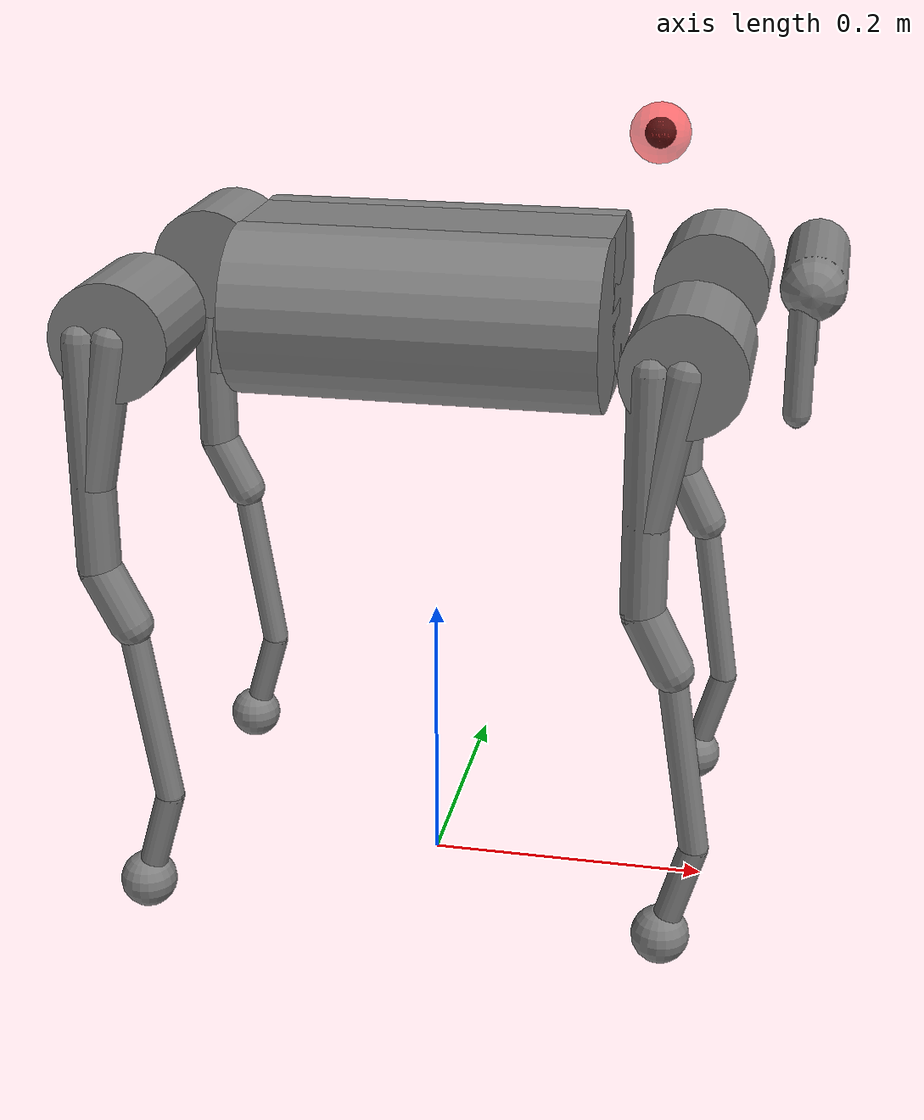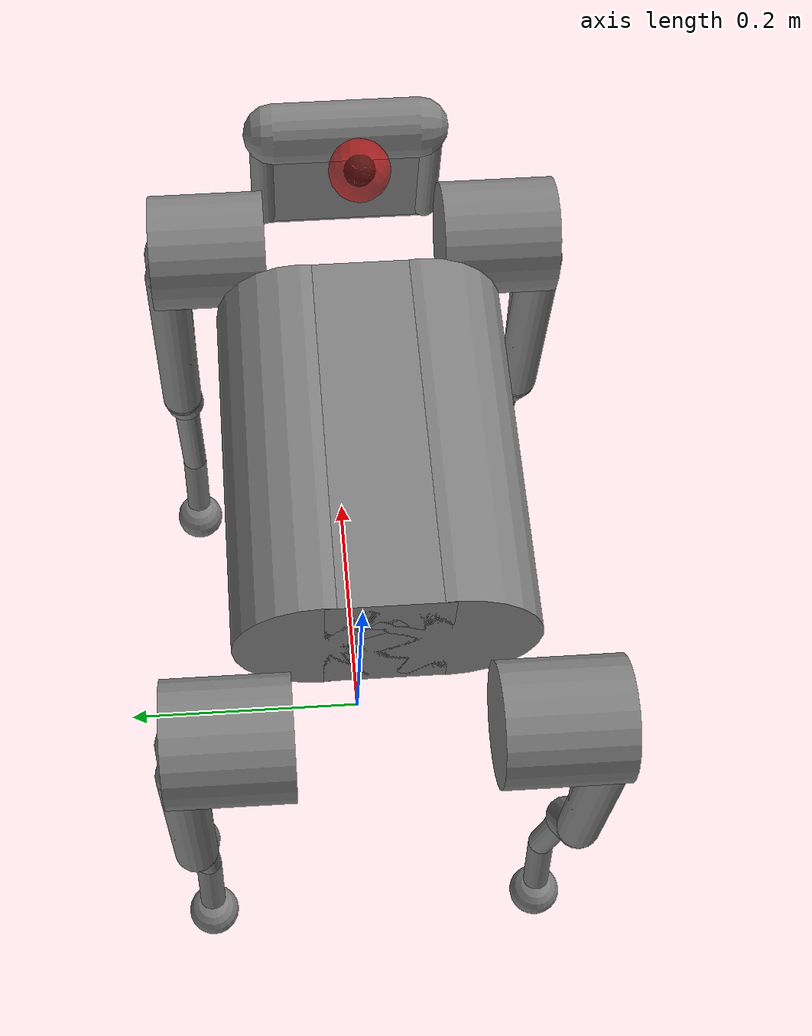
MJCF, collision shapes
<mujoco model="a1">
  <compiler angle="radian" meshdir="assets" texturedir="assets" autolimits="true"/>

  <option cone="elliptic" impratio="100"/>

  <default>
    <default class="a1">
      <geom friction="0.6" margin="0.001"/>
      <joint axis="0 1 0" damping="2" armature="0.01" frictionloss="0.2"/>
      <position kp="20" kv="0.5" forcerange="-33.5 33.5"/>
      <default class="abduction">
        <joint axis="1 0 0" damping="1" range="-0.802851 0.802851"/>
        <position ctrlrange="-0.802851 0.802851"/>
      </default>
      <default class="hip">
        <joint range="-1.0472 4.18879"/>
        <position ctrlrange="-1.0472 4.18879"/>
      </default>
      <default class="knee">
        <joint range="-2.69653 -0.916298"/>
        <position ctrlrange="-2.69653 -0.916298"/>
      </default>
      <default class="visual">
        <geom type="mesh" contype="0" conaffinity="0" group="2" material="dark"/>
      </default>
      <default class="collision">
        <geom group="3" type="capsule"/>
        <default class="hip_left">
          <geom size="0.04 0.04" quat="1 1 0 0" type="cylinder" pos="0 0.055 0"/>
        </default>
        <default class="hip_right">
          <geom size="0.04 0.04" quat="1 1 0 0" type="cylinder" pos="0 -0.055 0"/>
        </default>
        <default class="thigh1">
          <geom size="0.015" fromto="-0.02 0 0 -0.02 0 -0.16"/>
        </default>
        <default class="thigh2">
          <geom size="0.015" fromto="0 0 0 -0.02 0 -0.1"/>
        </default>
        <default class="thigh3">
          <geom size="0.015" fromto="-0.02 0 -0.16 0 0 -0.2"/>
        </default>
        <default class="calf1">
          <geom size="0.01" fromto="0 0 0 0.02 0 -0.13"/>
        </default>
        <default class="calf2">
          <geom size="0.01" fromto="0.02 0 -0.13 0 0 -0.2"/>
        </default>
        <default class="foot">
          <geom type="sphere" size="0.02" pos="0 0 -0.2" priority="1" solimp="0.015 1 0.02" condim="6"
            friction="0.8 0.02 0.01"/>
        </default>
      </default>
    </default>
  </default>

  <asset>
    <material name="dark" specular="0" shininess="0.25" rgba="0.2 0.2 0.2 1"/>
    <texture type="2d" name="trunk_A1" file="trunk_A1.png"/>
    <material name="carbonfibre" texture="trunk_A1" specular="0" shininess="0.25"/>

    <mesh class="a1" file="calf.obj"/>
    <mesh class="a1" file="hip.obj"/>
    <mesh class="a1" file="thigh.obj"/>
    <mesh class="a1" file="thigh_mirror.obj"/>
    <mesh class="a1" file="trunk.obj"/>
  </asset>

  <worldbody>
    <light name="spotlight" mode="targetbodycom" target="trunk" pos="0 -1 2"/>
    <body name="trunk" pos="0 0 0.43" childclass="a1">
      <freejoint/>
      <inertial mass="4.713" pos="0 0.0041 -0.0005"
        fullinertia="0.0158533 0.0377999 0.0456542 -3.66e-05 -6.11e-05 -2.75e-05"/>
      <geom class="visual" mesh="trunk" material="carbonfibre"/>
      <geom class="collision" size="0.125 0.04 0.057" type="box"/>
      <geom class="collision" quat="1 0 1 0" pos="0 -0.04 0" size="0.058 0.125" type="cylinder"/>
      <geom class="collision" quat="1 0 1 0" pos="0 +0.04 0" size="0.058 0.125" type="cylinder"/>
      <geom class="collision" pos="0.25 0 0" size="0.005 0.06 0.05" type="box"/>
      <geom class="collision" pos="0.25 0.06 -0.01" size="0.009 0.035"/>
      <geom class="collision" pos="0.25 -0.06 -0.01" size="0.009 0.035"/>
      <geom class="collision" pos="0.25 0 -0.05" size="0.005 0.06" quat="1 1 0 0"/>
      <geom class="collision" pos="0.255 0 0.0355" size="0.021 0.052" quat="1 1 0 0"/>

      <!-- Lidar body on top of trunk -->
      <body name="lidar_body" pos="0.15 0 0.12" euler="0 1.5708 0">
        <site name="lidar_origin" pos="0 0 0" size="0.02" type="sphere" rgba="1 0 0 0.5" />
        <!-- 40 evenly spaced lidar beams covering full 360 degrees (9 degrees apart) -->
        <site name="lidar_beam_0" pos="0 0 0" euler="0.000000 0 0" size="0.01" />
        <site name="lidar_beam_1" pos="0 0 0" euler="0.157080 0 0" size="0.01" />
        <site name="lidar_beam_2" pos="0 0 0" euler="0.314159 0 0" size="0.01" />
        <site name="lidar_beam_3" pos="0 0 0" euler="0.471239 0 0" size="0.01" />
        <site name="lidar_beam_4" pos="0 0 0" euler="0.628319 0 0" size="0.01" />
        <site name="lidar_beam_5" pos="0 0 0" euler="0.785398 0 0" size="0.01" />
        <site name="lidar_beam_6" pos="0 0 0" euler="0.942478 0 0" size="0.01" />
        <site name="lidar_beam_7" pos="0 0 0" euler="1.099557 0 0" size="0.01" />
        <site name="lidar_beam_8" pos="0 0 0" euler="1.256637 0 0" size="0.01" />
        <site name="lidar_beam_9" pos="0 0 0" euler="1.413717 0 0" size="0.01" />
        <site name="lidar_beam_10" pos="0 0 0" euler="1.570796 0 0" size="0.01" />
        <site name="lidar_beam_11" pos="0 0 0" euler="1.727876 0 0" size="0.01" />
        <site name="lidar_beam_12" pos="0 0 0" euler="1.884956 0 0" size="0.01" />
        <site name="lidar_beam_13" pos="0 0 0" euler="2.042035 0 0" size="0.01" />
        <site name="lidar_beam_14" pos="0 0 0" euler="2.199115 0 0" size="0.01" />
        <site name="lidar_beam_15" pos="0 0 0" euler="2.356194 0 0" size="0.01" />
        <site name="lidar_beam_16" pos="0 0 0" euler="2.513274 0 0" size="0.01" />
        <site name="lidar_beam_17" pos="0 0 0" euler="2.670354 0 0" size="0.01" />
        <site name="lidar_beam_18" pos="0 0 0" euler="2.827433 0 0" size="0.01" />
        <site name="lidar_beam_19" pos="0 0 0" euler="2.984513 0 0" size="0.01" />
        <site name="lidar_beam_20" pos="0 0 0" euler="3.141593 0 0" size="0.01" />
        <site name="lidar_beam_21" pos="0 0 0" euler="3.298672 0 0" size="0.01" />
        <site name="lidar_beam_22" pos="0 0 0" euler="3.455752 0 0" size="0.01" />
        <site name="lidar_beam_23" pos="0 0 0" euler="3.612832 0 0" size="0.01" />
        <site name="lidar_beam_24" pos="0 0 0" euler="3.769911 0 0" size="0.01" />
        <site name="lidar_beam_25" pos="0 0 0" euler="3.926991 0 0" size="0.01" />
        <site name="lidar_beam_26" pos="0 0 0" euler="4.084070 0 0" size="0.01" />
        <site name="lidar_beam_27" pos="0 0 0" euler="4.241150 0 0" size="0.01" />
        <site name="lidar_beam_28" pos="0 0 0" euler="4.398230 0 0" size="0.01" />
        <site name="lidar_beam_29" pos="0 0 0" euler="4.555309 0 0" size="0.01" />
        <site name="lidar_beam_30" pos="0 0 0" euler="4.712389 0 0" size="0.01" />
        <site name="lidar_beam_31" pos="0 0 0" euler="4.869469 0 0" size="0.01" />
        <site name="lidar_beam_32" pos="0 0 0" euler="5.026548 0 0" size="0.01" />
        <site name="lidar_beam_33" pos="0 0 0" euler="5.183628 0 0" size="0.01" />
        <site name="lidar_beam_34" pos="0 0 0" euler="5.340708 0 0" size="0.01" />
        <site name="lidar_beam_35" pos="0 0 0" euler="5.497787 0 0" size="0.01" />
        <site name="lidar_beam_36" pos="0 0 0" euler="5.654867 0 0" size="0.01" />
        <site name="lidar_beam_37" pos="0 0 0" euler="5.811946 0 0" size="0.01" />
        <site name="lidar_beam_38" pos="0 0 0" euler="5.969026 0 0" size="0.01" />
        <site name="lidar_beam_39" pos="0 0 0" euler="6.126106 0 0" size="0.01" />
      </body>

      <body name="FR_hip" pos="0.183 -0.047 0">
        <inertial mass="0.696" pos="-0.003311 -0.000635 3.1e-05" quat="0.507528 0.506268 0.491507 0.494499"
          diaginertia="0.000807752 0.00055293 0.000468983"/>
        <joint class="abduction" name="FR_hip_joint"/>
        <geom class="visual" mesh="hip" quat="0 1 0 0"/>
        <geom class="hip_right"/>
        <body name="FR_thigh" pos="0 -0.08505 0">
          <inertial mass="1.013" pos="-0.003237 0.022327 -0.027326" quat="0.999125 -0.00256393 -0.0409531 -0.00806091"
            diaginertia="0.00555739 0.00513936 0.00133944"/>
          <joint class="hip" name="FR_thigh_joint"/>
          <geom class="visual" mesh="thigh_mirror"/>
          <geom class="thigh1"/>
          <geom class="thigh2"/>
          <geom class="thigh3"/>
          <body name="FR_calf" pos="0 0 -0.2">
            <inertial mass="0.226" pos="0.00472659 0 -0.131975" quat="0.706886 0.017653 0.017653 0.706886"
              diaginertia="0.00340344 0.00339393 3.54834e-05"/>
            <joint class="knee" name="FR_calf_joint"/>
            <geom class="visual" mesh="calf"/>
            <geom class="calf1"/>
            <geom class="calf2"/>
            <geom class="foot"/>
          </body>
        </body>
      </body>
      <body name="FL_hip" pos="0.183 0.047 0">
        <inertial mass="0.696" pos="-0.003311 0.000635 3.1e-05" quat="0.494499 0.491507 0.506268 0.507528"
          diaginertia="0.000807752 0.00055293 0.000468983"/>
        <joint class="abduction" name="FL_hip_joint"/>
        <geom class="visual" mesh="hip"/>
        <geom class="hip_left"/>
        <geom class="collision" size="0.04 0.04" pos="0 0.055 0" quat="1 1 0 0" type="cylinder"/>
        <body name="FL_thigh" pos="0 0.08505 0">
          <inertial mass="1.013" pos="-0.003237 -0.022327 -0.027326" quat="0.999125 0.00256393 -0.0409531 0.00806091"
            diaginertia="0.00555739 0.00513936 0.00133944"/>
          <joint class="hip" name="FL_thigh_joint"/>
          <geom class="visual" mesh="thigh"/>
          <geom class="thigh1"/>
          <geom class="thigh2"/>
          <geom class="thigh3"/>
          <body name="FL_calf" pos="0 0 -0.2">
            <inertial mass="0.226" pos="0.00472659 0 -0.131975" quat="0.706886 0.017653 0.017653 0.706886"
              diaginertia="0.00340344 0.00339393 3.54834e-05"/>
            <joint class="knee" name="FL_calf_joint"/>
            <geom class="visual" mesh="calf"/>
            <geom class="calf1"/>
            <geom class="calf2"/>
            <geom class="foot"/>
          </body>
        </body>
      </body>
      <body name="RR_hip" pos="-0.183 -0.047 0">
        <inertial mass="0.696" pos="0.003311 -0.000635 3.1e-05" quat="0.491507 0.494499 0.507528 0.506268"
          diaginertia="0.000807752 0.00055293 0.000468983"/>
        <joint class="abduction" name="RR_hip_joint"/>
        <geom class="visual" quat="0 0 0 -1" mesh="hip"/>
        <geom class="hip_right"/>
        <body name="RR_thigh" pos="0 -0.08505 0">
          <inertial mass="1.013" pos="-0.003237 0.022327 -0.027326" quat="0.999125 -0.00256393 -0.0409531 -0.00806091"
            diaginertia="0.00555739 0.00513936 0.00133944"/>
          <joint class="hip" name="RR_thigh_joint"/>
          <geom class="visual" mesh="thigh_mirror"/>
          <geom class="thigh1"/>
          <geom class="thigh2"/>
          <geom class="thigh3"/>
          <body name="RR_calf" pos="0 0 -0.2">
            <inertial mass="0.226" pos="0.00472659 0 -0.131975" quat="0.706886 0.017653 0.017653 0.706886"
              diaginertia="0.00340344 0.00339393 3.54834e-05"/>
            <joint class="knee" name="RR_calf_joint"/>
            <geom class="visual" mesh="calf"/>
            <geom class="calf1"/>
            <geom class="calf2"/>
            <geom class="foot"/>
          </body>
        </body>
      </body>
      <body name="RL_hip" pos="-0.183 0.047 0">
        <inertial mass="0.696" pos="0.003311 0.000635 3.1e-05" quat="0.506268 0.507528 0.494499 0.491507"
          diaginertia="0.000807752 0.00055293 0.000468983"/>
        <joint class="abduction" name="RL_hip_joint"/>
        <geom class="visual" quat="0 0 1 0" mesh="hip"/>
        <geom class="hip_left"/>
        <body name="RL_thigh" pos="0 0.08505 0">
          <inertial mass="1.013" pos="-0.003237 -0.022327 -0.027326" quat="0.999125 0.00256393 -0.0409531 0.00806091"
            diaginertia="0.00555739 0.00513936 0.00133944"/>
          <joint class="hip" name="RL_thigh_joint"/>
          <geom class="visual" mesh="thigh"/>
          <geom class="thigh1"/>
          <geom class="thigh2"/>
          <geom class="thigh3"/>
          <body name="RL_calf" pos="0 0 -0.2">
            <inertial mass="0.226" pos="0.00472659 0 -0.131975" quat="0.706886 0.017653 0.017653 0.706886"
              diaginertia="0.00340344 0.00339393 3.54834e-05"/>
            <joint class="knee" name="RL_calf_joint"/>
            <geom class="visual" mesh="calf"/>
            <geom class="calf1"/>
            <geom class="calf2"/>
            <geom class="foot"/>
          </body>
        </body>
      </body>
    </body>
  </worldbody>

  <actuator>
    <position class="abduction" name="FR_hip" joint="FR_hip_joint"/>
    <position class="hip" name="FR_thigh" joint="FR_thigh_joint"/>
    <position class="knee" name="FR_calf" joint="FR_calf_joint"/>
    <position class="abduction" name="FL_hip" joint="FL_hip_joint"/>
    <position class="hip" name="FL_thigh" joint="FL_thigh_joint"/>
    <position class="knee" name="FL_calf" joint="FL_calf_joint"/>
    <position class="abduction" name="RR_hip" joint="RR_hip_joint"/>
    <position class="hip" name="RR_thigh" joint="RR_thigh_joint"/>
    <position class="knee" name="RR_calf" joint="RR_calf_joint"/>
    <position class="abduction" name="RL_hip" joint="RL_hip_joint"/>
    <position class="hip" name="RL_thigh" joint="RL_thigh_joint"/>
    <position class="knee" name="RL_calf" joint="RL_calf_joint"/>
  </actuator>

  <sensor>
    <!-- 40 evenly spaced lidar rangefinders covering full 360 degrees -->
    <rangefinder name="lidar_0" site="lidar_beam_0" cutoff="3.0" />
    <rangefinder name="lidar_1" site="lidar_beam_1" cutoff="3.0" />
    <rangefinder name="lidar_2" site="lidar_beam_2" cutoff="3.0" />
    <rangefinder name="lidar_3" site="lidar_beam_3" cutoff="3.0" />
    <rangefinder name="lidar_4" site="lidar_beam_4" cutoff="3.0" />
    <rangefinder name="lidar_5" site="lidar_beam_5" cutoff="3.0" />
    <rangefinder name="lidar_6" site="lidar_beam_6" cutoff="3.0" />
    <rangefinder name="lidar_7" site="lidar_beam_7" cutoff="3.0" />
    <rangefinder name="lidar_8" site="lidar_beam_8" cutoff="3.0" />
    <rangefinder name="lidar_9" site="lidar_beam_9" cutoff="3.0" />
    <rangefinder name="lidar_10" site="lidar_beam_10" cutoff="3.0" />
    <rangefinder name="lidar_11" site="lidar_beam_11" cutoff="3.0" />
    <rangefinder name="lidar_12" site="lidar_beam_12" cutoff="3.0" />
    <rangefinder name="lidar_13" site="lidar_beam_13" cutoff="3.0" />
    <rangefinder name="lidar_14" site="lidar_beam_14" cutoff="3.0" />
    <rangefinder name="lidar_15" site="lidar_beam_15" cutoff="3.0" />
    <rangefinder name="lidar_16" site="lidar_beam_16" cutoff="3.0" />
    <rangefinder name="lidar_17" site="lidar_beam_17" cutoff="3.0" />
    <rangefinder name="lidar_18" site="lidar_beam_18" cutoff="3.0" />
    <rangefinder name="lidar_19" site="lidar_beam_19" cutoff="3.0" />
    <rangefinder name="lidar_20" site="lidar_beam_20" cutoff="3.0" />
    <rangefinder name="lidar_21" site="lidar_beam_21" cutoff="3.0" />
    <rangefinder name="lidar_22" site="lidar_beam_22" cutoff="3.0" />
    <rangefinder name="lidar_23" site="lidar_beam_23" cutoff="3.0" />
    <rangefinder name="lidar_24" site="lidar_beam_24" cutoff="3.0" />
    <rangefinder name="lidar_25" site="lidar_beam_25" cutoff="3.0" />
    <rangefinder name="lidar_26" site="lidar_beam_26" cutoff="3.0" />
    <rangefinder name="lidar_27" site="lidar_beam_27" cutoff="3.0" />
    <rangefinder name="lidar_28" site="lidar_beam_28" cutoff="3.0" />
    <rangefinder name="lidar_29" site="lidar_beam_29" cutoff="3.0" />
    <rangefinder name="lidar_30" site="lidar_beam_30" cutoff="3.0" />
    <rangefinder name="lidar_31" site="lidar_beam_31" cutoff="3.0" />
    <rangefinder name="lidar_32" site="lidar_beam_32" cutoff="3.0" />
    <rangefinder name="lidar_33" site="lidar_beam_33" cutoff="3.0" />
    <rangefinder name="lidar_34" site="lidar_beam_34" cutoff="3.0" />
    <rangefinder name="lidar_35" site="lidar_beam_35" cutoff="3.0" />
    <rangefinder name="lidar_36" site="lidar_beam_36" cutoff="3.0" />
    <rangefinder name="lidar_37" site="lidar_beam_37" cutoff="3.0" />
    <rangefinder name="lidar_38" site="lidar_beam_38" cutoff="3.0" />
    <rangefinder name="lidar_39" site="lidar_beam_39" cutoff="3.0" />
  </sensor>

  <keyframe>
    <key name="home" qpos="0 0 0.27 1 0 0 0 0 0.9 -1.8 0 0.9 -1.8 0 0.9 -1.8 0 0.9 -1.8"
      ctrl="0 0.9 -1.8 0 0.9 -1.8 0 0.9 -1.8 0 0.9 -1.8"/>
  </keyframe>
</mujoco>
